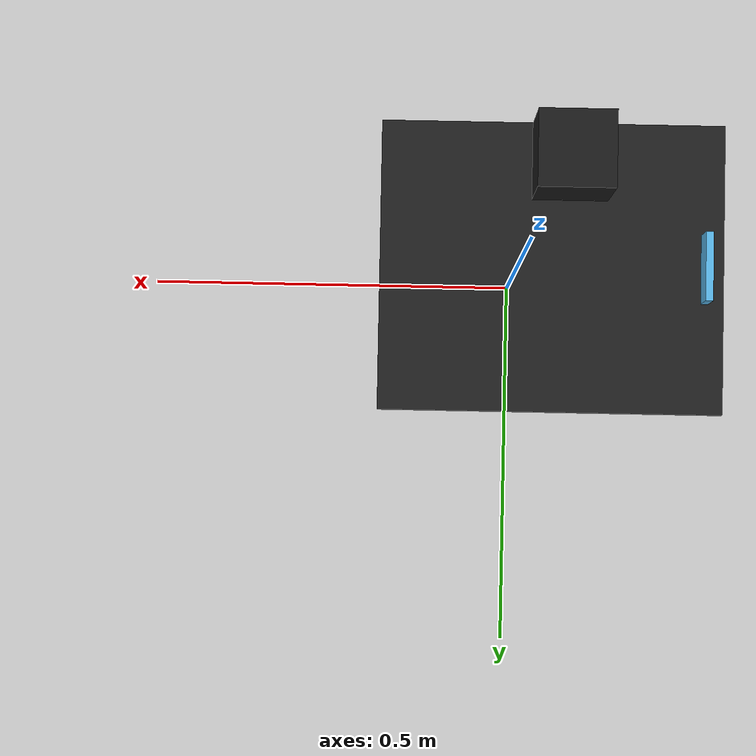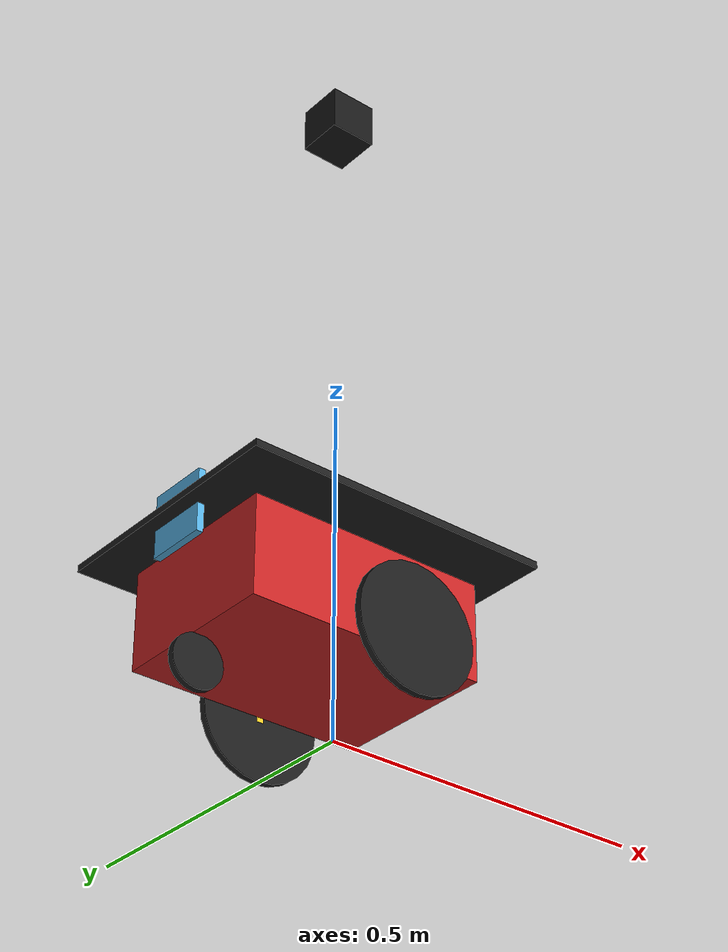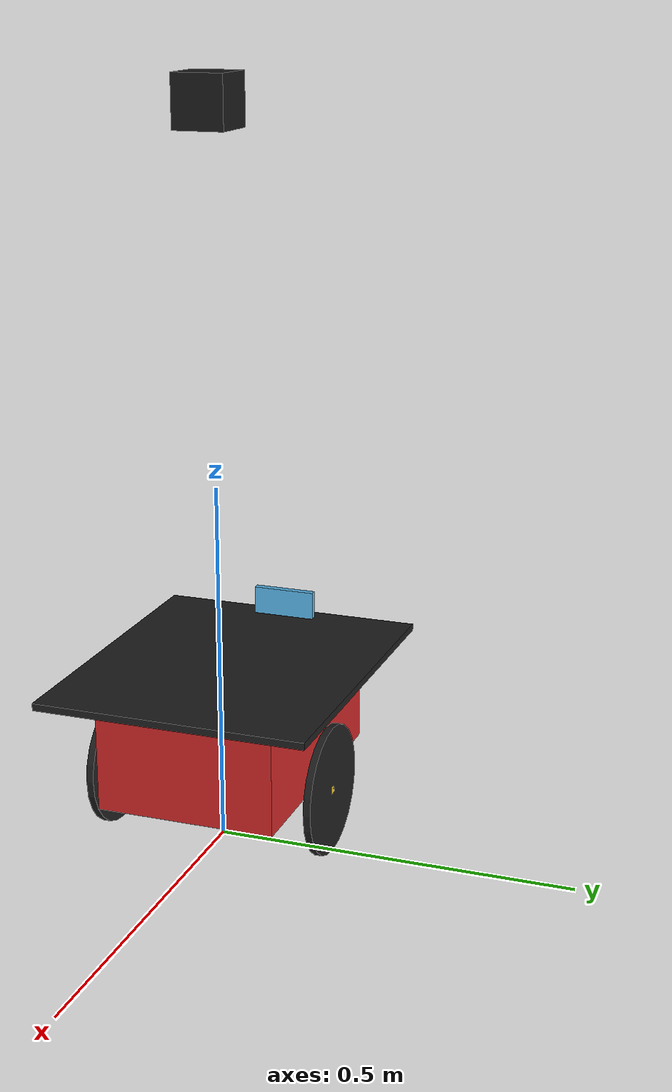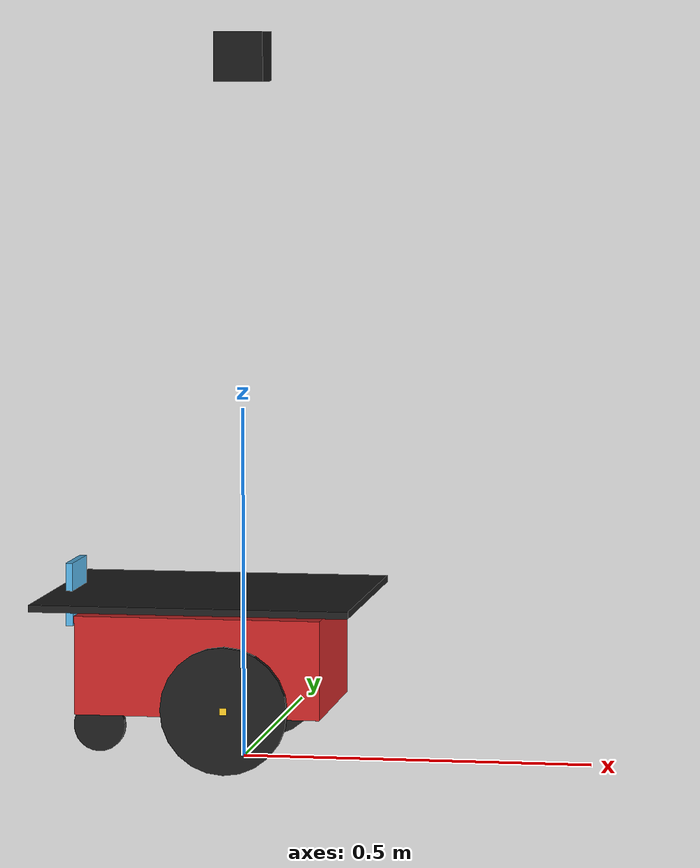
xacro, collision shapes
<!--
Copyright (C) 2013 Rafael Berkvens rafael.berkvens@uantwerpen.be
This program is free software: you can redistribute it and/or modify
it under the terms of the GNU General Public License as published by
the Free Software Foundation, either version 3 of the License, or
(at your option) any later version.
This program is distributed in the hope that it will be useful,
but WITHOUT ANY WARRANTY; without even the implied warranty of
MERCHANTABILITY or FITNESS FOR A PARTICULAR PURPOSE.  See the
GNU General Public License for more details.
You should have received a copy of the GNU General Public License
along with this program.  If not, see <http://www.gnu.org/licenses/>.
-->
<?xml version="1.0"?>
<robot name="pioneer3dx"
	xmlns:xacro="http://ros.org/wiki/xacro">
	<!-- import all gazebo-customization elements, including gazebo colors -->
	<xacro:include filename="$(find p3dx_description)/urdf/pioneer3dx.gazebo" />
	<!-- import the pioneer 3dx's wheels -->
	<xacro:include filename="$(find p3dx_description)/urdf/pioneer3dx_wheel.xacro" />

	<!-- chassis -->
	<link name="base_link">
		<inertial>
			<mass value="3.5" />
			<origin xyz="-0.05 0 0" />
			<inertia ixx="1" ixy="0" ixz="0" iyy="1" iyz="0" izz="1" />
		</inertial>
		<visual>
			<origin xyz="-0.045 0 0.148" rpy="0 0 0" />
			<geometry name="pioneer_geom">
				<mesh filename="package://p3dx_description/meshes/chassis.stl" />
			</geometry>
			<material name="ChassisRed"></material>
		</visual>
		<collision>
			<origin xyz="-0.045 0 0.145" rpy="0 0 0" />
			<geometry>
				<box size="0.35 0.25 0.14" />
			</geometry>
		</collision>
	</link>
	<!-- top_plate -->
	<link name="top_plate">
		<inertial>
			<mass value="0.01" />
			<origin xyz="0 0 0" />
			<inertia ixx="1" ixy="0" ixz="0" iyy="1" iyz="0" izz="1" />
		</inertial>
		<visual>
			<origin xyz="0 0 0" rpy="0 0 0" />
			<geometry name="top_geom">
				<mesh filename="package://p3dx_description/meshes/top.stl" />
			</geometry>
			<material name="TopBlack"></material>
		</visual>
		<collision>
			<origin xyz="0.0 0 0" rpy="0 0 0" />
			<geometry name="pioneer_geom">
				<box size="0.45 0.38 0.01" />
			</geometry>
		</collision>
	</link>
	<joint name="base_top_joint" type="fixed">
		<origin xyz="-0.045 0 0.234" rpy="0 0 0" />
		<parent link="base_link" />
		<child link="top_plate" />
	</joint>
	<!-- swivel -->
	<link name="swivel">
		<inertial>
			<mass value="0.1" />
			<origin xyz="0 0 0" />
			<inertia ixx="0.01" ixy="0" ixz="0" iyy="0.01" iyz="0" izz="0.01" />
		</inertial>
		<visual>
			<origin xyz="0 0 0" rpy="0 0 0" />
			<geometry name="pioneer_geom">
				<mesh filename="package://p3dx_description/meshes/swivel.stl" />
			</geometry>
			<material name="swivel"></material>
		</visual>
		<collision>
			<origin xyz="0 0 0" rpy="0 0 0" />
			<geometry>
				<box size="0.00001 0.00001 0.00001" />
			</geometry>
		</collision>
	</link>
	<joint name="base_swivel_joint" type="fixed">
		<origin xyz="-0.185 0 0.055" rpy="0 0 0" />
		<axis xyz="0 0 1" />
		<anchor xyz="0 0 0" />
		<limit effort="100" velocity="100" k_velocity="0" />
		<joint_properties damping="0.0" friction="0.0" />
		<parent link="base_link" />
		<child link="swivel" />
	</joint>
	<!-- center_hubcap -->
	<link name="center_hubcap">
		<inertial>
			<mass value="0.01" />
			<origin xyz="0 0 0" />
			<inertia ixx="0.012411765597" ixy="-0.000711733678" ixz="0.00050272983" iyy="0.015218160428" iyz="-0.000004273467" izz="0.011763977943" />
		</inertial>
		<visual>
			<origin xyz="0 0 0" rpy="0 0 0" />
			<geometry name="pioneer_geom">
				<mesh filename="package://p3dx_description/meshes/center_hubcap.stl" />
			</geometry>
			<material name="swivel"></material>
		</visual>
		<collision>
			<origin xyz="0 0 0" rpy="0 0 0" />
			<geometry>
				<box size="0.00001 0.00001 0.00001" />
			</geometry>
		</collision>
	</link>
	<joint name="swivel_hubcap_joint" type="fixed">
		<origin xyz="-0.026 0 -0.016" rpy="0 0 0" />
		<axis xyz="0 1 0" />
		<anchor xyz="0 0 0" />
		<limit effort="100" velocity="100" k_velocity="0" />
		<joint_properties damping="0.0" friction="0.0" />
		<parent link="swivel" />
		<child link="center_wheel" />
	</joint>
	<!-- center_wheel -->
	<link name="center_wheel">
		<inertial>
			<mass value="1.0" />
			<origin xyz="0 0 0" />
			<inertia ixx="0.012411765597" ixy="-0.000711733678" ixz="0.00050272983" iyy="0.015218160428" iyz="-0.000004273467" izz="0.011763977943" />
		</inertial>
		<visual>
			<origin xyz="0 0 0" rpy="0 0 0" />
			<geometry name="pioneer_geom">
				<mesh filename="package://p3dx_description/meshes/center_wheel.stl" />
			</geometry>
			<material name="WheelBlack"></material>
		</visual>
		<collision>
			<origin xyz="0 0 0" rpy="${-3.1415927/2.0} 0 0" />
			<geometry>
				<cylinder radius="0.0375" length="0.01" />
			</geometry>
		</collision>
	</link>
	<joint name="center_wheel_joint" type="fixed">
		<origin xyz="-0.0035 0 -0.001" rpy="0 0 0"/>
		<parent link="center_wheel"/>
		<child link="center_hubcap"/>
	</joint>

	<xacro:p3dx_wheel suffix="left" parent="base_link" reflect="-1"/>
	<xacro:p3dx_wheel suffix="right" parent="base_link" reflect="1"/>

	<link name='aruco_marker_link'>

        <visual name='aruco_marker_visual'>
          <geometry>
            <mesh filename="package://p3dx_description/meshes/Marker0.dae"/>
            <scale>1 1 1</scale>
          </geometry>
        </visual>
        <collision>
		<origin xyz="0.0 0 0" rpy="0 0 0" />
		<geometry name="aruco_marker_visual">
			<box size="0.09 0.09 0.01" />
		</geometry>
	</collision>
        <self_collide>0</self_collide>
        <inertial>
          <pose>0 0 0 0 0 0</pose>
          <inertia ixx="0.5" ixy="0" ixz="0" iyy="0.5" iyz="0" izz="1"/>
          <mass value="0.5"/>
        </inertial>
		<origin xyz="0.0 0.4 -0.05" rpy="0 0 0"/>

      </link>
      <joint name='aruco_marker_joint' type='fixed'>
        <parent link="top_plate"/>
        <child link="aruco_marker_link"/>
		<origin xyz="-0.2 0.0 0" rpy="0 1.57 0"/>
      </joint>

	<link name="rgbd_camera_link">
  <collision>
    <origin rpy="0 0 0" xyz="0 0 0"/>
    <geometry>
      <box size="0.07 0.07 0.07"/>
    </geometry>
  </collision>
  <visual>
    <origin rpy="0 0 0" xyz="0 0 0"/>
    <geometry>
      <box size="0.07 0.07 0.07"/>
    </geometry>
    <material name="black_metal">
      <color rgba="0.1 0.1 0.1 1"/>
    </material>
  </visual>
  <inertial>
    <mass value="1e-5"/>
    <origin rpy="0 0 0" xyz="0 0 0"/>
    <inertia ixx="1e-6" ixy="0" ixz="0" iyy="1e-6" iyz="0" izz="1e-6"/>
  </inertial>
</link>

<joint name="rgbd_camera_joint" type="fixed">
  <axis xyz="0 1 0"/>
  <origin xyz="0 0 1" rpy="0 1.57 0"/>
  <parent link="base_link"/>
  <child link="rgbd_camera_link"/>
</joint>

<gazebo reference="rgbd_camera_link">
  <sensor name="rgbd_camera" type="depth">
    <alwaysOn>true</alwaysOn>
    <updateRate>30.0</updateRate>
    <camera>
      <horizontal_fov>1.3962634</horizontal_fov>
      <image>
        <width>640</width>
        <height>480</height>
        <format>R8G8B8</format>
      </image>
      <clip>
        <near>0.02</near>
        <far>20.0</far>
      </clip>
      <depth>
        <update_rate>30.0</update_rate>
        <image>
          <width>640</width>
          <height>480</height>
          <format>FLOAT32</format>
        </image>
        <clip>
          <near>0.02</near>
          <far>20.0</far>
        </clip>
      </depth>
    </camera>
    <plugin filename="libgazebo_ros_openni_kinect.so" name="gazebo_ros_openni_kinect">
      <alwaysOn>true</alwaysOn>
      <updateRate>30.0</updateRate>
      <cameraName>rgbd_camera</cameraName>
      <imageTopicName>rgbd_camera/image_raw</imageTopicName>
      <cameraInfoTopicName>rgbd_camera/camera_info</cameraInfoTopicName>
      <pointCloudTopicName>rgbd_camera/points</pointCloudTopicName>
      <depthImageTopicName>rgbd_camera/depth/image_raw</depthImageTopicName>
      <depthImageCameraInfoTopicName>rgbd_camera/depth/camera_info</depthImageCameraInfoTopicName>
      <frameName>rgbd_camera_link</frameName>
      <baseline>0.1</baseline>
      <distortionK1>0.0</distortionK1>
      <distortionK2>0.0</distortionK2>
      <distortionK3>0.0</distortionK3>
      <distortionT1>0.0</distortionT1>
      <distortionT2>0.0</distortionT2>
      <CxPrime>0.0</CxPrime>
      <CyPrime>0.0</CyPrime>
      <focalLength>0.0</focalLength>
      <Rx>0.0</Rx>
      <Ry>0.0</Ry>
      <Rz>0.0</Rz>
      <Tx>0.0</Tx>
      <Ty>0.0</Ty>
      <Tz>0.0</Tz>
    </plugin>
  </sensor>
</gazebo>

</robot>

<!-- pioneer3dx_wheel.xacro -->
<robot xmlns:xacro="http://ros.org/wiki/xacro">

	<!-- properties (constants) -->
	<property name="M_PI" value="3.14159" />

	<!-- right/left hubcap + wheel -->
	<xacro:macro name="p3dx_wheel" params="suffix parent reflect">

		<!-- wheel -->
		<link name="p3dx_${suffix}_wheel">
			<inertial>
				<mass value="0.5" />
				<origin xyz="0 0 0" />
				<inertia ixx="0.012411765597" ixy="0" ixz="0" iyy="0.015218160428"
					iyz="0" izz="0.011763977943" />
			</inertial>

			<visual name="base_visual">
				<origin xyz="0 0 0" rpy="0 0 0" />
				<geometry name="pioneer_geom">
					<mesh filename="package://p3dx_description/meshes/${suffix}_wheel.stl" />
				</geometry>
				<material name="WheelBlack">
					<color rgba="0.117 0.117 0.117 1" />
				</material>
			</visual>

			<collision>
				<origin xyz="0 0 0" rpy="${-3.1415927/2} 0 0" />
				<geometry>
					<cylinder radius="0.09" length="0.01" />
				</geometry>
			</collision>
		</link>

		<joint name="base_${suffix}_hubcap_joint" type="fixed">
			<origin xyz="0 0 0" rpy="0 0 0" />
			<parent link="p3dx_${suffix}_wheel" />
			<child link="p3dx_${suffix}_hubcap" />
		</joint>

		<!-- hubcap -->
		<link name="p3dx_${suffix}_hubcap">
			<inertial>
				<mass value="0.01" />
				<origin xyz="0 0 0" />
				<inertia ixx="0.012411765597" ixy="0" ixz="0" iyy="0.015218160428"
					iyz="0" izz="0.011763977943" />
			</inertial>

			<visual name="base_visual">
				<origin xyz="0 0 0" rpy="0 0 0" />
				<geometry name="pioneer_geom">
					<mesh filename="package://p3dx_description/meshes/${suffix}_hubcap.stl" />
				</geometry>

				<material name="HubcapYellow">
					<color rgba="1.0 0.811 0.151 1.0" />
				</material>
			</visual>

			<collision>
				<origin xyz="0 0 0" rpy="0 0 0" />
				<geometry>
					<box size="0.01 0.01 0.01" />
				</geometry>
			</collision>
		</link>

		<joint name="base_${suffix}_wheel_joint" type="continuous">
			<axis xyz="0 1 0" />
			<anchor xyz="0 0 0" />
			<limit effort="100" velocity="100" />
			<joint_properties damping="0.0" friction="0.0" />
			<origin xyz="0 ${reflect*0.158} 0.091" rpy="0 0 0" />
			<parent link="base_link" />
			<child link="p3dx_${suffix}_wheel" />
		</joint>

		<!-- gazebo elements -->

	    <transmission name="${parent}_${suffix}_wheel_trans">
	      <type>pr2_mechanism_model/SimpleTransmission</type>
	      <joint name="base_${suffix}_wheel_joint">
	      	<hardwareInterface>VelocityJointInterface</hardwareInterface>
	  	  </joint>
	      <actuator name="base_${suffix}_wheel_motor">
	        <mechanicalReduction>${reflect * 624/35 * 80/19}</mechanicalReduction>
	      </actuator>
	    </transmission>

		<gazebo reference="p3dx_${suffix}_hubcap">
			<material>Gazebo/Yellow</material>
		</gazebo>

		<gazebo reference="p3dx_${suffix}_wheel">
			<material>Gazebo/Black</material>
			<mu1>0.5</mu1>
			<mu2>50.0</mu2>
			<kp>100000000.0</kp>
			<kd>1.0</kd>
		</gazebo>

	</xacro:macro>

</robot>
